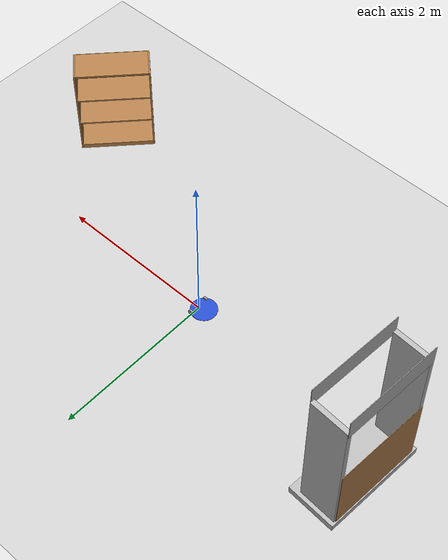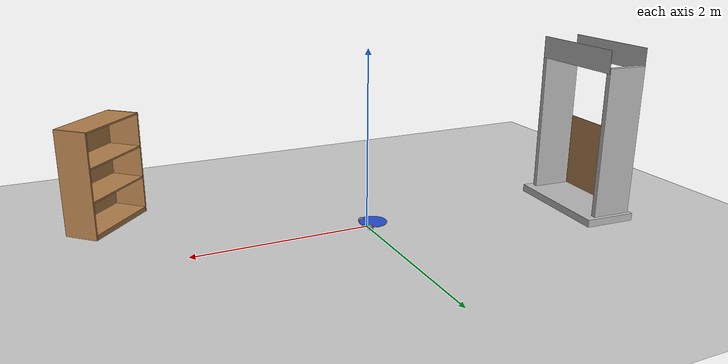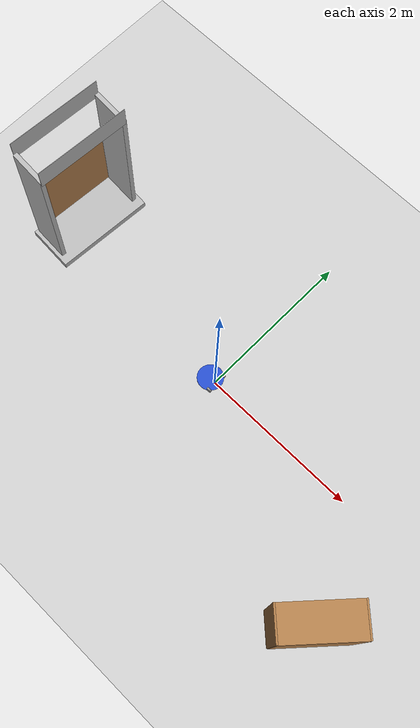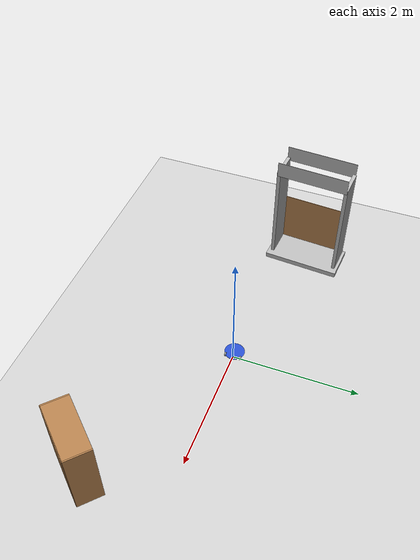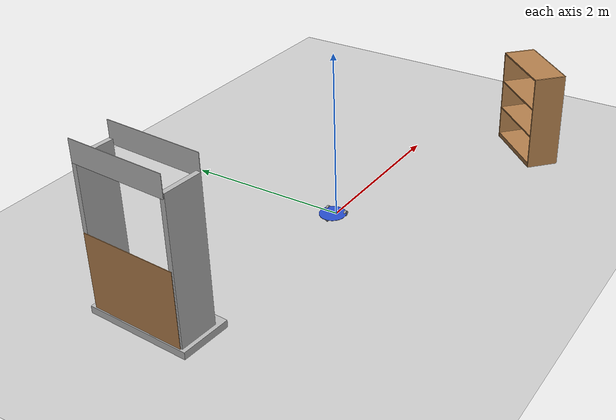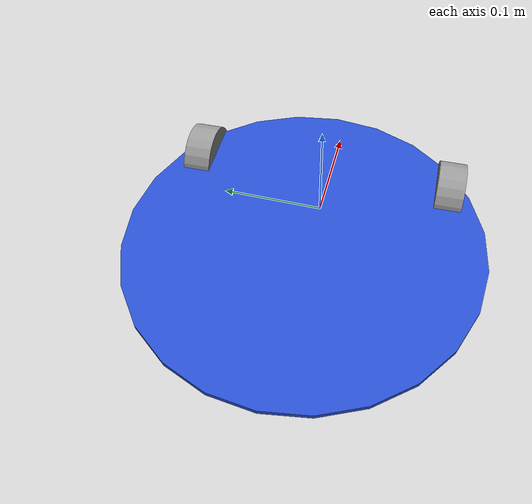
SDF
<sdf version="1.6">
 <world name="default">
  <light name="sun" type="directional">
   <pose>0 0 10 0 -0 0</pose>
   <diffuse>0.8 0.8 0.8 1</diffuse>
   <specular>0.1 0.1 0.1 1</specular>
   <attenuation>
    <range>1000</range>
    <constant>0.9</constant>
    <linear>0.01</linear>
    <quadratic>0.001</quadratic>
   </attenuation>
   <direction>-0.5 0.5 -1</direction>
  </light>
  <model name="ground_plane">
   <static>1</static>
   <link name="link">
    <collision name="collision">
     <geometry><plane><normal>0 0 1</normal><size>100 100</size></plane></geometry>
     <surface><friction><ode><mu>100</mu><mu2>50</mu2></ode></friction></surface>
    </collision>
    <visual name="visual">
     <cast_shadows>0</cast_shadows>
     <geometry><plane><normal>0 0 1</normal><size>100 100</size></plane></geometry>
     <material>
      <script><uri>file://media/materials/scripts/gazebo.material</uri><name>Gazebo/Grey</name></script>
     </material>
    </visual>
   </link>
  </model>
  <gravity>0 0 -9.8</gravity>
  <magnetic_field>6e-06 2.3e-05 -4.2e-05</magnetic_field>
  <atmosphere type="adiabatic"/>
  <physics name="default_physics" default="0" type="ode">
   <max_step_size>0.001</max_step_size>
   <real_time_factor>1</real_time_factor>
   <real_time_update_rate>1000</real_time_update_rate>
  </physics>
  <scene><ambient>0.4 0.4 0.4 1</ambient><background>0.7 0.7 0.7 1</background><shadows>1</shadows></scene>
  <spherical_coordinates>
   <surface_model>EARTH_WGS84</surface_model>
   <latitude_deg>0</latitude_deg>
   <longitude_deg>0</longitude_deg>
   <elevation>0</elevation>
   <heading_deg>0</heading_deg>
  </spherical_coordinates>
  <model name="mbot">
   <link name="base_footprint">
    <inertial>
     <pose>0 0 0.042 0 -0 0</pose>
     <mass>20</mass>
     <inertia><ixx>0.128042</ixx><ixy>0</ixy><ixz>0</ixz><iyy>0.128042</iyy><iyz>0</iyz><izz>0.256</izz></inertia>
    </inertial>
    <collision name="base_footprint_fixed_joint_lump__base_link_collision">
     <pose>0 0 0.042 0 -0 0</pose>
     <geometry><cylinder><length>0.005</length><radius>0.16</radius></cylinder></geometry>
    </collision>
    <visual name="base_footprint_visual">
     <geometry><box><size>0.001 0.001 0.001</size></box></geometry>
     <material><script><uri>__default__</uri><name>__default__</name></script></material>
    </visual>
    <visual name="base_footprint_fixed_joint_lump__base_link_visual_1">
     <pose>0 0 0.042 0 -0 0</pose>
     <geometry><cylinder><length>0.005</length><radius>0.16</radius></cylinder></geometry>
     <material>
      <script><name>Gazebo/Blue</name><uri>file://media/materials/scripts/gazebo.material</uri></script>
     </material>
    </visual>
   </link>
   <link name="back_caster_link">
    <pose>-0.12 0 0.01975 0 -0 0</pose>
    <inertial>
     <mass>0.5</mass>
     <inertia>
      <ixx>7.80125e-05</ixx>
      <ixy>0</ixy>
      <ixz>0</ixz>
      <iyy>7.80125e-05</iyy>
      <iyz>0</iyz>
      <izz>7.80125e-05</izz>
     </inertia>
    </inertial>
    <collision name="back_caster_link_collision">
     <geometry><sphere><radius>0.01975</radius></sphere></geometry>
    </collision>
    <visual name="back_caster_link_visual">
     <geometry><sphere><radius>0.01975</radius></sphere></geometry>
     <material>
      <script><name>Gazebo/Black</name><uri>file://media/materials/scripts/gazebo.material</uri></script>
     </material>
    </visual>
   </link>
   <joint name="back_caster_joint" type="revolute">
    <child>back_caster_link</child>
    <parent>base_footprint</parent>
    <axis>
     <xyz>0 1 0</xyz>
     <limit><lower>-1e+16</lower><upper>1e+16</upper></limit>
     <dynamics><spring_reference>0</spring_reference><spring_stiffness>0</spring_stiffness></dynamics>
     <use_parent_model_frame>1</use_parent_model_frame>
    </axis>
   </joint>
   <link name="left_wheel_link">
    <pose>0.09 -0.12 0.032 0 -0 0</pose>
    <inertial>
     <mass>2</mass>
     <inertia>
      <ixx>0.000616167</ixx>
      <ixy>0</ixy>
      <ixz>0</ixz>
      <iyy>0.000616167</iyy>
      <iyz>0</iyz>
      <izz>0.001024</izz>
     </inertia>
    </inertial>
    <collision name="left_wheel_link_collision">
     <pose>0 0 0 1.5708 -0 0</pose>
     <geometry><cylinder><length>0.025</length><radius>0.032</radius></cylinder></geometry>
    </collision>
    <visual name="left_wheel_link_visual">
     <pose>0 0 0 1.5708 -0 0</pose>
     <geometry><cylinder><length>0.025</length><radius>0.032</radius></cylinder></geometry>
     <material>
      <script><name>Gazebo/Gray</name><uri>file://media/materials/scripts/gazebo.material</uri></script>
     </material>
    </visual>
   </link>
   <joint name="left_wheel_joint" type="revolute">
    <child>left_wheel_link</child>
    <parent>base_footprint</parent>
    <axis>
     <xyz>0 1 0</xyz>
     <limit><lower>-1e+16</lower><upper>1e+16</upper></limit>
     <dynamics><spring_reference>0</spring_reference><spring_stiffness>0</spring_stiffness></dynamics>
     <use_parent_model_frame>1</use_parent_model_frame>
    </axis>
   </joint>
   <link name="right_wheel_link">
    <pose>0.09 0.12 0.032 0 -0 0</pose>
    <inertial>
     <mass>2</mass>
     <inertia>
      <ixx>0.000616167</ixx>
      <ixy>0</ixy>
      <ixz>0</ixz>
      <iyy>0.000616167</iyy>
      <iyz>0</iyz>
      <izz>0.001024</izz>
     </inertia>
    </inertial>
    <collision name="right_wheel_link_collision">
     <pose>0 0 0 1.5708 -0 0</pose>
     <geometry><cylinder><length>0.025</length><radius>0.032</radius></cylinder></geometry>
    </collision>
    <visual name="right_wheel_link_visual">
     <pose>0 0 0 1.5708 -0 0</pose>
     <geometry><cylinder><length>0.025</length><radius>0.032</radius></cylinder></geometry>
     <material>
      <script><name>Gazebo/Gray</name><uri>file://media/materials/scripts/gazebo.material</uri></script>
     </material>
    </visual>
   </link>
   <joint name="right_wheel_joint" type="revolute">
    <child>right_wheel_link</child>
    <parent>base_footprint</parent>
    <axis>
     <xyz>0 1 0</xyz>
     <limit><lower>-1e+16</lower><upper>1e+16</upper></limit>
     <dynamics><spring_reference>0</spring_reference><spring_stiffness>0</spring_stiffness></dynamics>
     <use_parent_model_frame>1</use_parent_model_frame>
    </axis>
   </joint>
   <static>0</static>
   <plugin name="differential_drive_controller" filename="libgazebo_ros_diff_drive.so">
    <rosDebugLevel>Debug</rosDebugLevel>
    <publishWheelTF>true</publishWheelTF>
    <robotNamespace>/</robotNamespace>
    <publishTf>1</publishTf>
    <publishWheelJointState>true</publishWheelJointState>
    <alwaysOn>true</alwaysOn>
    <updateRate>100.0</updateRate>
    <legacyMode>true</legacyMode>
    <leftJoint>left_wheel_joint</leftJoint>
    <rightJoint>right_wheel_joint</rightJoint>
    <wheelSeparation>0.24</wheelSeparation>
    <wheelDiameter>0.064</wheelDiameter>
    <broadcastTF>1</broadcastTF>
    <wheelTorque>30</wheelTorque>
    <wheelAcceleration>1.8</wheelAcceleration>
    <commandTopic>cmd_vel</commandTopic>
    <odometryFrame>odom</odometryFrame>
    <odometryTopic>odom</odometryTopic>
    <robotBaseFrame>base_footprint</robotBaseFrame>
   </plugin>
   <pose>-0.075218 -0.001869 -4e-06 5e-05 2.7e-05 0.021711</pose>
  </model>
  <model name="frc2016_drawbridge">
   <link name="base">
    <inertial>
     <mass>10</mass>
     <pose>0 0 1 0 -0 0</pose>
     <inertia><ixx>3.64907</ixx><ixy>0</ixy><ixz>0</ixz><iyy>4.67075</iyy><iyz>0</iyz><izz>1.66649</izz></inertia>
    </inertial>
    <visual name="platform">
     <pose>0 0 0.0425 0 -0 0</pose>
     <geometry><box><size>1.27 0.5969 0.085</size></box></geometry>
    </visual>
    <collision name="platform">
     <pose>0 0 0.0425 0 -0 0</pose>
     <geometry><box><size>1.27 0.5969 0.085</size></box></geometry>
    </collision>
    <visual name="right_wall">
     <pose>0.55879 0.04444 0.889 0 -0 0</pose>
     <geometry><box><size>0.05715 0.45698 1.77165</size></box></geometry>
    </visual>
    <collision name="right_wall">
     <pose>0.55879 0.04444 0.889 0 -0 0</pose>
     <geometry><box><size>0.05715 0.45698 1.77165</size></box></geometry>
    </collision>
    <visual name="left_wall">
     <pose>-0.55879 0.04444 0.889 0 -0 0</pose>
     <geometry><box><size>0.05715 0.45698 1.77165</size></box></geometry>
    </visual>
    <collision name="left_wall">
     <pose>-0.55879 0.04444 0.889 0 -0 0</pose>
     <geometry><box><size>0.05715 0.45698 1.77165</size></box></geometry>
    </collision>
    <visual name="front_upper_wall">
     <pose>0 0.27611 1.84286 0 -0 0</pose>
     <geometry><box><size>1.1557 0.006347 0.254</size></box></geometry>
    </visual>
    <collision name="front_upper_wall">
     <pose>0 0.27611 1.84286 0 -0 0</pose>
     <geometry><box><size>1.1557 0.006347 0.254</size></box></geometry>
    </collision>
    <visual name="back_upper_wall">
     <pose>0 -0.18722 1.84286 0 -0 0</pose>
     <geometry><box><size>1.1557 0.006347 0.254</size></box></geometry>
    </visual>
    <collision name="back_upper_wall">
     <pose>0 -0.18722 1.84286 0 -0 0</pose>
     <geometry><box><size>1.1557 0.006347 0.254</size></box></geometry>
    </collision>
   </link>
   <link name="bridge">
    <pose>0 0.28245 0.50577 0 -0 0</pose>
    <inertial>
     <mass>2</mass>
     <pose>0 -0.28245 -0.50577 0 -0 0</pose>
     <inertia>
      <ixx>0.139361</ixx>
      <ixy>0</ixy>
      <ixz>0</ixz>
      <iyy>0.357088</iyy>
      <iyz>0</iyz>
      <izz>0.217741</izz>
     </inertia>
    </inertial>
    <visual name="visual">
     <geometry><box><size>1.14298 0.006347 0.9144</size></box></geometry>
     <material><script><name>Gazebo/WoodFloor</name><uri>__default__</uri></script></material>
    </visual>
    <collision name="collision"><geometry><box><size>1.14298 0.006347 0.9144</size></box></geometry></collision>
   </link>
   <joint name="bridge_joint" type="revolute">
    <pose>0 0 -0.4172 0 -0 0</pose>
    <parent>base</parent>
    <child>bridge</child>
    <axis>
     <xyz>1 0 0</xyz>
     <limit><lower>-2</lower><upper>0</upper></limit>
     <use_parent_model_frame>0</use_parent_model_frame>
     <dynamics><spring_reference>0</spring_reference><spring_stiffness>0</spring_stiffness></dynamics>
    </axis>
   </joint>
   <pose>-2.58027 0.430651 -3e-06 2e-06 4e-06 1.50772</pose>
  </model>
  <model name="bookshelf">
   <static>1</static>
   <link name="link">
    <inertial><mass>1</mass></inertial>
    <collision name="back">
     <pose>0 0.005 0.6 0 -0 0</pose>
     <geometry><box><size>0.9 0.01 1.2</size></box></geometry>
    </collision>
    <visual name="visual1">
     <pose>0 0.005 0.6 0 -0 0</pose>
     <geometry><box><size>0.9 0.01 1.2</size></box></geometry>
     <material>
      <script><uri>file://media/materials/scripts/gazebo.material</uri><name>Gazebo/Wood</name></script>
     </material>
    </visual>
    <collision name="left_side">
     <pose>0.45 -0.195 0.6 0 -0 0</pose>
     <geometry><box><size>0.02 0.4 1.2</size></box></geometry>
    </collision>
    <visual name="visual2">
     <pose>0.45 -0.195 0.6 0 -0 0</pose>
     <geometry><box><size>0.02 0.4 1.2</size></box></geometry>
     <material>
      <script><uri>file://media/materials/scripts/gazebo.material</uri><name>Gazebo/Wood</name></script>
     </material>
    </visual>
    <collision name="right_side">
     <pose>-0.45 -0.195 0.6 0 -0 0</pose>
     <geometry><box><size>0.02 0.4 1.2</size></box></geometry>
    </collision>
    <visual name="visual3">
     <pose>-0.45 -0.195 0.6 0 -0 0</pose>
     <geometry><box><size>0.02 0.4 1.2</size></box></geometry>
     <material>
      <script><uri>file://media/materials/scripts/gazebo.material</uri><name>Gazebo/Wood</name></script>
     </material>
    </visual>
    <collision name="bottom">
     <pose>0 -0.195 0.03 0 -0 0</pose>
     <geometry><box><size>0.88 0.4 0.06</size></box></geometry>
    </collision>
    <visual name="visual4">
     <pose>0 -0.195 0.03 0 -0 0</pose>
     <geometry><box><size>0.88 0.4 0.06</size></box></geometry>
     <material>
      <script><uri>file://media/materials/scripts/gazebo.material</uri><name>Gazebo/Wood</name></script>
     </material>
    </visual>
    <collision name="top">
     <pose>0 -0.195 1.19 0 -0 0</pose>
     <geometry><box><size>0.88 0.4 0.02</size></box></geometry>
    </collision>
    <visual name="visual5">
     <pose>0 -0.195 1.19 0 -0 0</pose>
     <geometry><box><size>0.88 0.4 0.02</size></box></geometry>
     <material>
      <script><uri>file://media/materials/scripts/gazebo.material</uri><name>Gazebo/Wood</name></script>
     </material>
    </visual>
    <collision name="low_shelf">
     <pose>0 -0.195 0.43 0 -0 0</pose>
     <geometry><box><size>0.88 0.4 0.02</size></box></geometry>
    </collision>
    <visual name="visual6">
     <pose>0 -0.195 0.43 0 -0 0</pose>
     <geometry><box><size>0.88 0.4 0.02</size></box></geometry>
     <material>
      <script><uri>file://media/materials/scripts/gazebo.material</uri><name>Gazebo/Wood</name></script>
     </material>
    </visual>
    <collision name="high_shelf">
     <pose>0 -0.195 0.8 0 -0 0</pose>
     <geometry><box><size>0.88 0.4 0.02</size></box></geometry>
    </collision>
    <visual name="visual7">
     <pose>0 -0.195 0.8 0 -0 0</pose>
     <geometry><box><size>0.88 0.4 0.02</size></box></geometry>
     <material>
      <script><uri>file://media/materials/scripts/gazebo.material</uri><name>Gazebo/Wood</name></script>
     </material>
    </visual>
   </link>
   <pose>2.78607 -1.41528 0 0 0 -2.31543</pose>
  </model>
 </world>
</sdf>
